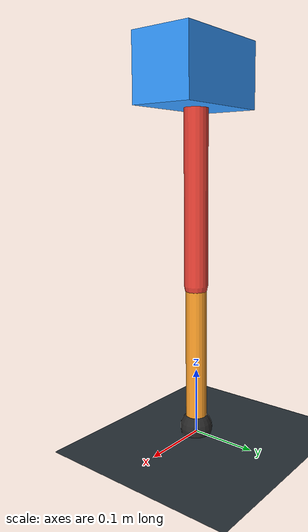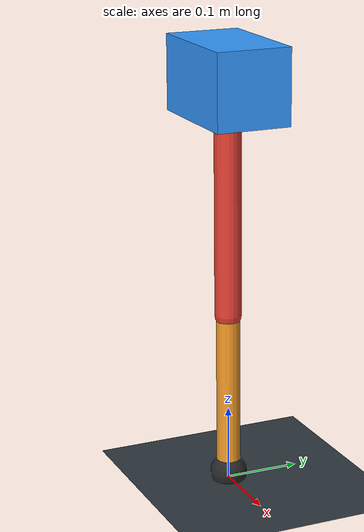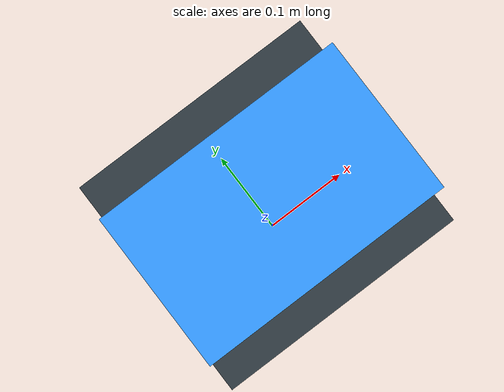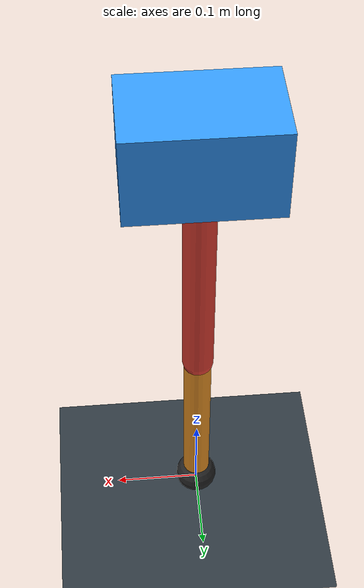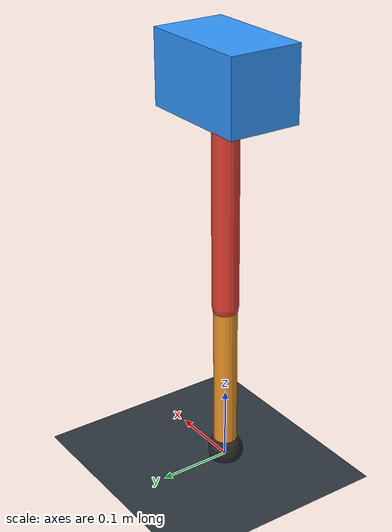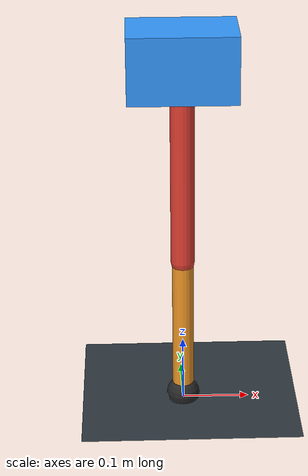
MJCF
<mujoco model="single_axis_two_bar">
  <compiler angle="radian" inertiafromgeom="true"/>
  <option timestep="0.001" integrator="implicitfast" gravity="0 0 -9.81"/>
  <default>
    <joint damping="0.08"/>
    <geom friction="1.2 0.01 0.0001" condim="3"/>
  </default>
  <worldbody>
    <geom name="floor" type="plane" size="5 5 0.1" rgba="0.18 0.22 0.25 1"/>
    <body name="carriage" pos="0 0 0.5467423358958801">
      <joint name="pole_slide" type="slide" axis="0 0 1"/>
      <geom name="payload" type="box" size="0.08 0.05 0.05" mass="2.639294488981226" rgba="0.2 0.6 1 1"/>
      <body name="thigh" pos="0 0 0">
        <joint name="hip" type="hinge" axis="0 1 0"/>
        <geom name="thigh_link" type="capsule" fromto="0 0 0 0 0 -0.313768295131055" size="0.018" mass="0.2235640563630948" rgba="0.9 0.25 0.2 1"/>
        <body name="shank" pos="0 0 -0.313768295131055">
          <joint name="knee" type="hinge" axis="0 1 0"/>
          <geom name="shank_link" type="capsule" fromto="0 0 0 0 0 -0.2241104016688214" size="0.016" mass="0.15968162254671756" rgba="0.95 0.6 0.15 1"/>
          <geom name="foot" type="sphere" pos="0 0 -0.2241104016688214" size="0.025" mass="0.03" rgba="0.15 0.15 0.15 1"/>
          <site name="toe" pos="0 0 -0.2241104016688214" size="0.008"/>
        </body>
      </body>
    </body>
  </worldbody>
  <actuator>
    <motor name="hip_motor" joint="hip" ctrlrange="-33.90088157744769 33.90088157744769"/>
    <motor name="knee_motor" joint="knee" ctrlrange="-93.97196669502877 93.97196669502877"/>
  </actuator>
</mujoco>
